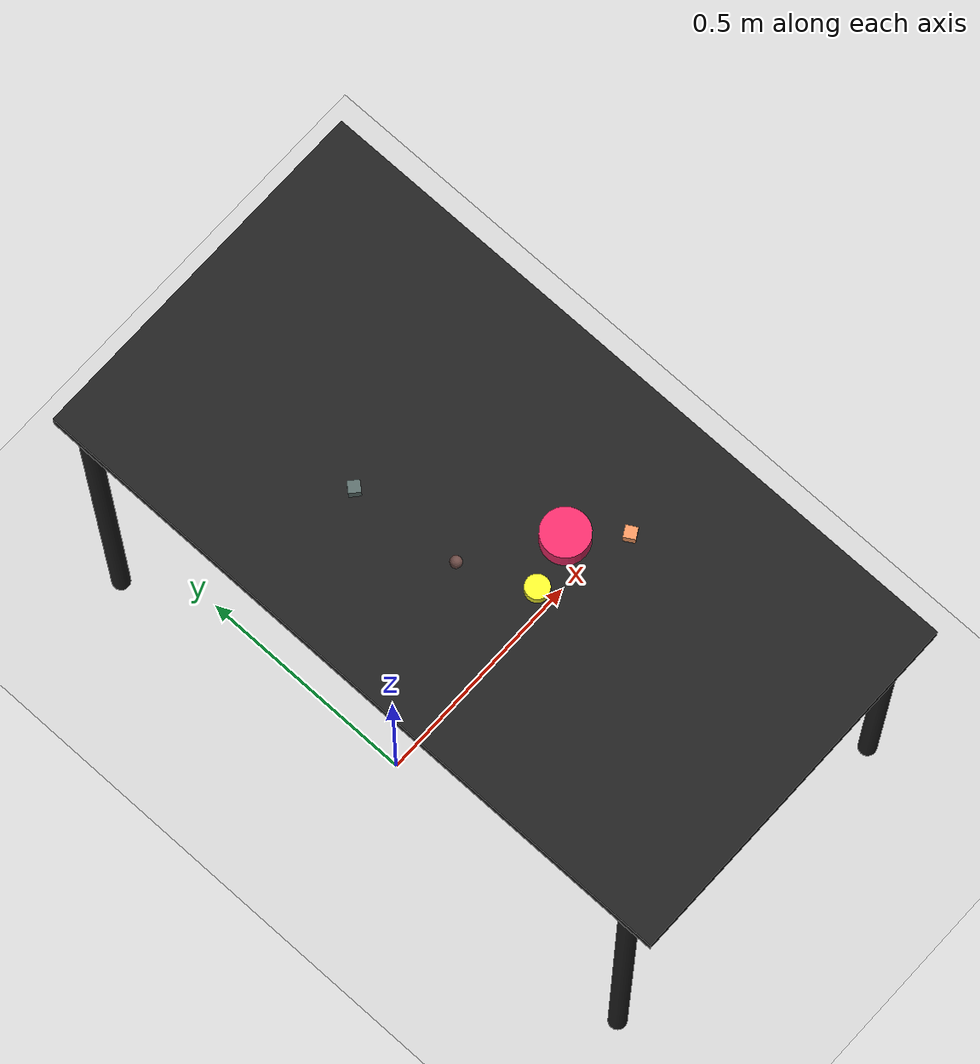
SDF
<?xml version="1.0" ?>
<sdf version="1.6">
  <world name="arm_world">
    <plugin filename="gz-sim-physics-system" name="gz::sim::systems::Physics">
      <engine>
        <filename>libgz-physics-bullet-featherstone-plugin.so</filename>
      </engine>
    </plugin>
    <plugin filename="gz-sim-user-commands-system" name="gz::sim::systems::UserCommands"/>
    <plugin filename="gz-sim-scene-broadcaster-system" name="gz::sim::systems::SceneBroadcaster"/>
    <plugin filename="gz-sim-sensors-system" name="gz::sim::systems::Sensors">
      <render_engine>ogre2</render_engine>
    </plugin>
    <gravity>0.0 0.0 -9.8</gravity>
    <scene>
      <shadows>false</shadows>
    </scene>
    <gui>
      <camera name="user_camera">
        <pose>0.75 -0.75 1.4 0 0.29 2.21</pose>
      </camera>
    </gui>
    <include>
      <uri>https://fuel.gazebosim.org/1.0/OpenRobotics/models/Sun</uri>
    </include>
    <model name="table">
      <static>true</static>
      <include>
        <uri>model://table</uri>
      </include>
      <pose>0.29 0 0 0 0 1.5708</pose>
    </model>
    <model name="ground_plane">
      <static>true</static>
      <link name="link">
        <collision name="collision">
          <geometry>
            <plane>
              <normal>0 0 1</normal>
            </plane>
          </geometry>
          <surface>
            <friction>
              <ode>
                <mu>1.0</mu>
                <mu2>1.0</mu2>
              </ode>
            </friction>
          </surface>
        </collision>
        <visual name="visual">
          <geometry>
            <plane>
              <normal>0 0 1</normal>
              <size>100 100</size>
            </plane>
          </geometry>
          <material>
            <ambient>0.8 0.8 0.8 1</ambient>
            <diffuse>0.8 0.8 0.8 1</diffuse>
            <specular>0.8 0.8 0.8 1</specular>
          </material>
        </visual>
      </link>
    </model>
    <model name="cylinder_l_0">
      <pose>0.357 -0.121 1.05 0 0 4.23</pose>
      <link name="cylinder_l_0_link">
        <inertial>
          <mass>0.05</mass>
          <inertia>
            <ixx>2.04e-7</ixx>
            <iyy>2.04e-7</iyy>
            <izz>3.9e-8</izz>
            <ixy>0</ixy>
            <ixz>0</ixz>
            <iyz>0</iyz>
          </inertia>
        </inertial>
        <collision name="cylinder_l_0_collision">
          <geometry>
            <cylinder>
              <radius>0.05</radius>
              <length>0.05</length>
            </cylinder>
          </geometry>
          <surface>
            <friction>
              <ode>
                <mu>0.8</mu>
                <mu2>0.8</mu2>
                <fdir1>0 0 1</fdir1>
                <slip1>0.001</slip1>
                <slip2>0.001</slip2>
              </ode>
              <torsional>
                <coefficient>0.1</coefficient>
                <surface_radius>0.015</surface_radius>
                <use_patch_radius>true</use_patch_radius>
              </torsional>
            </friction>
            <contact>
              <ode>
                <kp>1e5</kp>
                <kd>10</kd>
                <max_vel>0.1</max_vel>
                <min_depth>0.001</min_depth>
                <soft_cfm>0.01</soft_cfm>
                <soft_erp>0.2</soft_erp>
              </ode>
            </contact>
            <bounce>
              <restitution_coefficient>0.2</restitution_coefficient>
              <threshold>0.01</threshold>
            </bounce>
          </surface>
        </collision>
        <visual name="cylinder_l_0_visual">
          <geometry>
            <cylinder>
              <radius>0.05</radius>
              <length>0.05</length>
            </cylinder>
          </geometry>
          <material>
            <ambient>0.93 0.17 0.41 1</ambient>
            <diffuse>0.93 0.17 0.41 1</diffuse>
          </material>
        </visual>
        <velocity_decay>
          <linear>1</linear>
          <angular>1</angular>
        </velocity_decay>
      </link>
    </model>
    <model name="cube_s_1">
      <pose>0.441 -0.208 1.05 0 0 0.52</pose>
      <link name="cube_s_1_link">
        <inertial>
          <mass>0.05</mass>
          <inertia>
            <ixx>2.04e-7</ixx>
            <iyy>2.04e-7</iyy>
            <izz>3.9e-8</izz>
            <ixy>0</ixy>
            <ixz>0</ixz>
            <iyz>0</iyz>
          </inertia>
        </inertial>
        <collision name="cube_s_1_collision">
          <geometry>
            <box>
              <size>0.025 0.025 0.025</size>
            </box>
          </geometry>
          <surface>
            <friction>
              <ode>
                <mu>0.8</mu>
                <mu2>0.8</mu2>
                <fdir1>0 0 1</fdir1>
                <slip1>0.001</slip1>
                <slip2>0.001</slip2>
              </ode>
              <torsional>
                <coefficient>0.1</coefficient>
                <surface_radius>0.015</surface_radius>
                <use_patch_radius>true</use_patch_radius>
              </torsional>
            </friction>
            <contact>
              <ode>
                <kp>1e5</kp>
                <kd>10</kd>
                <max_vel>0.1</max_vel>
                <min_depth>0.001</min_depth>
                <soft_cfm>0.01</soft_cfm>
                <soft_erp>0.2</soft_erp>
              </ode>
            </contact>
            <bounce>
              <restitution_coefficient>0.2</restitution_coefficient>
              <threshold>0.01</threshold>
            </bounce>
          </surface>
        </collision>
        <visual name="cube_s_1_visual">
          <geometry>
            <box>
              <size>0.025 0.025 0.025</size>
            </box>
          </geometry>
          <material>
            <ambient>0.93 0.58 0.37 1</ambient>
            <diffuse>0.93 0.58 0.37 1</diffuse>
          </material>
        </visual>
        <velocity_decay>
          <linear>1</linear>
          <angular>1</angular>
        </velocity_decay>
      </link>
    </model>
    <model name="cylinder_m_2">
      <pose>0.247 -0.15 1.05 0 0 3.32</pose>
      <link name="cylinder_m_2_link">
        <inertial>
          <mass>0.05</mass>
          <inertia>
            <ixx>2.04e-7</ixx>
            <iyy>2.04e-7</iyy>
            <izz>3.9e-8</izz>
            <ixy>0</ixy>
            <ixz>0</ixz>
            <iyz>0</iyz>
          </inertia>
        </inertial>
        <collision name="cylinder_m_2_collision">
          <geometry>
            <cylinder>
              <radius>0.025</radius>
              <length>0.025</length>
            </cylinder>
          </geometry>
          <surface>
            <friction>
              <ode>
                <mu>0.8</mu>
                <mu2>0.8</mu2>
                <fdir1>0 0 1</fdir1>
                <slip1>0.001</slip1>
                <slip2>0.001</slip2>
              </ode>
              <torsional>
                <coefficient>0.1</coefficient>
                <surface_radius>0.015</surface_radius>
                <use_patch_radius>true</use_patch_radius>
              </torsional>
            </friction>
            <contact>
              <ode>
                <kp>1e5</kp>
                <kd>10</kd>
                <max_vel>0.1</max_vel>
                <min_depth>0.001</min_depth>
                <soft_cfm>0.01</soft_cfm>
                <soft_erp>0.2</soft_erp>
              </ode>
            </contact>
            <bounce>
              <restitution_coefficient>0.2</restitution_coefficient>
              <threshold>0.01</threshold>
            </bounce>
          </surface>
        </collision>
        <visual name="cylinder_m_2_visual">
          <geometry>
            <cylinder>
              <radius>0.025</radius>
              <length>0.025</length>
            </cylinder>
          </geometry>
          <material>
            <ambient>0.94 0.94 0.17 1</ambient>
            <diffuse>0.94 0.94 0.17 1</diffuse>
          </material>
        </visual>
        <velocity_decay>
          <linear>1</linear>
          <angular>1</angular>
        </velocity_decay>
      </link>
    </model>
    <model name="cube_s_3">
      <pose>0.162 0.232 1.05 0 0 2.44</pose>
      <link name="cube_s_3_link">
        <inertial>
          <mass>0.05</mass>
          <inertia>
            <ixx>2.04e-7</ixx>
            <iyy>2.04e-7</iyy>
            <izz>3.9e-8</izz>
            <ixy>0</ixy>
            <ixz>0</ixz>
            <iyz>0</iyz>
          </inertia>
        </inertial>
        <collision name="cube_s_3_collision">
          <geometry>
            <box>
              <size>0.025 0.025 0.025</size>
            </box>
          </geometry>
          <surface>
            <friction>
              <ode>
                <mu>0.8</mu>
                <mu2>0.8</mu2>
                <fdir1>0 0 1</fdir1>
                <slip1>0.001</slip1>
                <slip2>0.001</slip2>
              </ode>
              <torsional>
                <coefficient>0.1</coefficient>
                <surface_radius>0.015</surface_radius>
                <use_patch_radius>true</use_patch_radius>
              </torsional>
            </friction>
            <contact>
              <ode>
                <kp>1e5</kp>
                <kd>10</kd>
                <max_vel>0.1</max_vel>
                <min_depth>0.001</min_depth>
                <soft_cfm>0.01</soft_cfm>
                <soft_erp>0.2</soft_erp>
              </ode>
            </contact>
            <bounce>
              <restitution_coefficient>0.2</restitution_coefficient>
              <threshold>0.01</threshold>
            </bounce>
          </surface>
        </collision>
        <visual name="cube_s_3_visual">
          <geometry>
            <box>
              <size>0.025 0.025 0.025</size>
            </box>
          </geometry>
          <material>
            <ambient>0.35 0.42 0.41 1</ambient>
            <diffuse>0.35 0.42 0.41 1</diffuse>
          </material>
        </visual>
        <velocity_decay>
          <linear>1</linear>
          <angular>1</angular>
        </velocity_decay>
      </link>
    </model>
    <model name="sphere_s_4">
      <pose>0.184 -0.004 1.05 0 0 4.75</pose>
      <link name="sphere_s_4_link">
        <inertial>
          <mass>0.05</mass>
          <inertia>
            <ixx>2.04e-7</ixx>
            <iyy>2.04e-7</iyy>
            <izz>3.9e-8</izz>
            <ixy>0</ixy>
            <ixz>0</ixz>
            <iyz>0</iyz>
          </inertia>
        </inertial>
        <collision name="sphere_s_4_collision">
          <geometry>
            <sphere>
              <radius>0.0125</radius>
            </sphere>
          </geometry>
          <surface>
            <friction>
              <ode>
                <mu>0.8</mu>
                <mu2>0.8</mu2>
                <fdir1>0 0 1</fdir1>
                <slip1>0.001</slip1>
                <slip2>0.001</slip2>
              </ode>
              <torsional>
                <coefficient>0.1</coefficient>
                <surface_radius>0.015</surface_radius>
                <use_patch_radius>true</use_patch_radius>
              </torsional>
            </friction>
            <contact>
              <ode>
                <kp>1e5</kp>
                <kd>10</kd>
                <max_vel>0.1</max_vel>
                <min_depth>0.001</min_depth>
                <soft_cfm>0.01</soft_cfm>
                <soft_erp>0.2</soft_erp>
              </ode>
            </contact>
            <bounce>
              <restitution_coefficient>0.2</restitution_coefficient>
              <threshold>0.01</threshold>
            </bounce>
          </surface>
        </collision>
        <visual name="sphere_s_4_visual">
          <geometry>
            <sphere>
              <radius>0.0125</radius>
            </sphere>
          </geometry>
          <material>
            <ambient>0.42 0.29 0.27 1</ambient>
            <diffuse>0.42 0.29 0.27 1</diffuse>
          </material>
        </visual>
        <velocity_decay>
          <linear>1</linear>
          <angular>1</angular>
        </velocity_decay>
      </link>
    </model>
  </world>
</sdf>

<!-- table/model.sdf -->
<sdf version="1.5">
  <model name="table">
    <static>true</static>
    <link name="link">
      <collision name="surface">
        <pose>0 0 1.0 0 0 0</pose>
        <geometry>
          <box>
            <size>1.5 0.8 0.03</size>
          </box>
        </geometry>
        <surface>
          <friction>
            <ode>
              <mu>0.6</mu>
              <mu2>0.6</mu2>
            </ode>
          </friction>
        </surface>
      </collision>
      <visual name="surface">
        <pose>0 0 1.0 0 0 0</pose>
        <geometry>
          <box>
            <size>1.5 0.8 0.03</size>
          </box>
        </geometry>
        <material>
          <script>
            <uri>file://media/materials/scripts/gazebo.material</uri>
            <name>Gazebo/Black</name>
          </script>
        </material>
      </visual>
      <collision name="front_left_leg">
        <pose>0.68 0.38 0.5 0 0 0</pose>
        <geometry>
          <cylinder>
            <radius>0.02</radius>
            <length>1.0</length>
          </cylinder>
        </geometry>
      </collision>
      <visual name="front_left_leg">
        <pose>0.68 0.38 0.5 0 0 0</pose>
        <geometry>
          <cylinder>
            <radius>0.02</radius>
            <length>1.0</length>
          </cylinder>
        </geometry>
        <material>
          <script>
            <uri>file://media/materials/scripts/gazebo.material</uri>
            <name>Gazebo/Black</name>
          </script>
        </material>
      </visual>
      <collision name="front_right_leg">
        <pose>0.68 -0.38 0.5 0 0 0</pose>
        <geometry>
          <cylinder>
            <radius>0.02</radius>
            <length>1.0</length>
          </cylinder>
        </geometry>
      </collision>
      <visual name="front_right_leg">
        <pose>0.68 -0.38 0.5 0 0 0</pose>
        <geometry>
          <cylinder>
            <radius>0.02</radius>
            <length>1.0</length>
          </cylinder>
        </geometry>
        <material>
          <script>
            <uri>file://media/materials/scripts/gazebo.material</uri>
            <name>Gazebo/Black</name>
          </script>
        </material>
      </visual>
      <collision name="back_right_leg">
        <pose>-0.68 -0.38 0.5 0 0 0</pose>
        <geometry>
          <cylinder>
            <radius>0.02</radius>
            <length>1.0</length>
          </cylinder>
        </geometry>
      </collision>
      <visual name="back_right_leg">
        <pose>-0.68 -0.38 0.5 0 0 0</pose>
        <geometry>
          <cylinder>
            <radius>0.02</radius>
            <length>1.0</length>
          </cylinder>
        </geometry>
        <material>
          <script>
            <uri>file://media/materials/scripts/gazebo.material</uri>
            <name>Gazebo/Black</name>
          </script>
        </material>
      </visual>
      <collision name="back_left_leg">
        <pose>-0.68 0.38 0.5 0 0 0</pose>
        <geometry>
          <cylinder>
            <radius>0.02</radius>
            <length>1.0</length>
          </cylinder>
        </geometry>
      </collision>
      <visual name="back_left_leg">
        <pose>-0.68 0.38 0.5 0 0 0</pose>
        <geometry>
          <cylinder>
            <radius>0.02</radius>
            <length>1.0</length>
          </cylinder>
        </geometry>
        <material>
          <script>
            <uri>file://media/materials/scripts/gazebo.material</uri>
            <name>Gazebo/Black</name>
          </script>
        </material>
      </visual>
    </link>
  </model>
</sdf>
